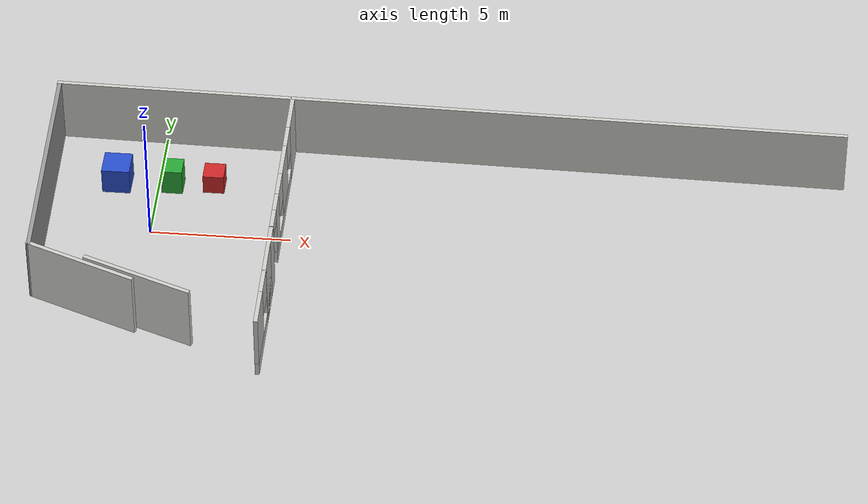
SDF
<sdf version="1.6">
 <world name="default">
  <model name="ground_plane">
   <static>1</static>
   <link name="link">
    <collision name="collision">
     <geometry><plane><normal>0 0 1</normal><size>100 100</size></plane></geometry>
     <surface><friction><ode><mu>100</mu><mu2>50</mu2></ode></friction></surface>
    </collision>
    <visual name="visual">
     <cast_shadows>0</cast_shadows>
     <geometry><plane><normal>0 0 1</normal><size>100 100</size></plane></geometry>
     <material>
      <script><uri>file://media/materials/scripts/gazebo.material</uri><name>Gazebo/Grey</name></script>
     </material>
    </visual>
   </link>
  </model>
  <model name="unit_box_0_0">
   <pose>-1.5 2.5 0.5 0 -0 0</pose>
   <link name="link">
    <inertial>
     <mass>10</mass>
     <inertia>
      <ixx>0.166667</ixx>
      <ixy>0</ixy>
      <ixz>0</ixz>
      <iyy>0.166667</iyy>
      <iyz>0</iyz>
      <izz>0.166667</izz>
     </inertia>
    </inertial>
    <collision name="collision"><geometry><box><size>1 1 1</size></box></geometry></collision>
    <visual name="visual">
     <geometry><box><size>1 1 1</size></box></geometry>
     <material>
      <script><name>Gazebo/Blue</name><uri>file://media/materials/scripts/gazebo.material</uri></script>
     </material>
    </visual>
   </link>
  </model>
  <model name="unit_box_0_1">
   <pose>0.5 2.5 0.5 0 -0 0</pose>
   <link name="link">
    <inertial>
     <mass>10</mass>
     <inertia>
      <ixx>0.166667</ixx>
      <ixy>0</ixy>
      <ixz>0</ixz>
      <iyy>0.166667</iyy>
      <iyz>0</iyz>
      <izz>0.166667</izz>
     </inertia>
    </inertial>
    <collision name="collision"><geometry><box><size>0.75 0.75 1</size></box></geometry></collision>
    <visual name="visual">
     <geometry><box><size>0.75 0.75 1</size></box></geometry>
     <material>
      <script><name>Gazebo/Green</name><uri>file://media/materials/scripts/gazebo.material</uri></script>
     </material>
    </visual>
   </link>
  </model>
  <model name="unit_box_0_2">
   <pose>2.0 2.5 0.5 0 -0 0</pose>
   <link name="link">
    <inertial>
     <mass>10</mass>
     <inertia>
      <ixx>0.166667</ixx>
      <ixy>0</ixy>
      <ixz>0</ixz>
      <iyy>0.166667</iyy>
      <iyz>0</iyz>
      <izz>0.166667</izz>
     </inertia>
    </inertial>
    <collision name="collision"><geometry><box><size>0.75 0.75 0.75</size></box></geometry></collision>
    <visual name="visual">
     <geometry><box><size>0.75 0.75 0.75</size></box></geometry>
     <material>
      <script><name>Gazebo/Red</name><uri>file://media/materials/scripts/gazebo.material</uri></script>
     </material>
    </visual>
   </link>
  </model>
  <model name="Erle Office">
   <link name="Wall_37">
    <pose>-0.042288 9.49816 0 0 0 -0.020076</pose>
    <visual name="Wall_37_Visual">
     <pose>0 0 1.25 0 -0 0</pose>
     <geometry><box><size>28.4042 0.15 2.5</size></box></geometry>
     <material>
      <script><uri>file://media/materials/scripts/gazebo.material</uri><name>Gazebo/CeilingTiled</name></script>
      <ambient>1 1 1 1</ambient>
      <diffuse>1 1 1 1</diffuse>
      <specular>0 0 0 1</specular>
      <emissive>0 0 0 1</emissive>
     </material>
    </visual>
    <collision name="Wall_37_Collision">
     <pose>0 0 1.25 0 -0 0</pose>
     <geometry><box><size>28.4042 0.15 2.5</size></box></geometry>
     <surface>
      <friction>
       <ode><mu>1</mu><mu2>1</mu2><fdir1>0 0 0</fdir1><slip1>0</slip1><slip2>0</slip2></ode>
       <torsional>
        <coefficient>1</coefficient>
        <patch_radius>0</patch_radius>
        <surface_radius>0</surface_radius>
        <use_patch_radius>1</use_patch_radius>
        <ode><slip>0</slip></ode>
       </torsional>
      </friction>
      <bounce><restitution_coefficient>0</restitution_coefficient><threshold>1e+06</threshold></bounce>
      <contact>
       <collide_without_contact>0</collide_without_contact>
       <collide_without_contact_bitmask>1</collide_without_contact_bitmask>
       <collide_bitmask>1</collide_bitmask>
       <ode>
        <soft_cfm>0</soft_cfm>
        <soft_erp>0.2</soft_erp>
        <kp>1e+13</kp>
        <kd>1</kd>
        <max_vel>0.01</max_vel>
        <min_depth>0</min_depth>
       </ode>
       <bullet>
        <split_impulse>1</split_impulse>
        <split_impulse_penetration_threshold>-0.01</split_impulse_penetration_threshold>
        <soft_cfm>0</soft_cfm>
        <soft_erp>0.2</soft_erp>
        <kp>1e+13</kp>
        <kd>1</kd>
       </bullet>
      </contact>
     </surface>
    </collision>
   </link>
   <link name="Wall_39">
    <pose>-14.0693 5.51177 0 0 0 -1.55076</pose>
    <visual name="Wall_39_Visual">
     <pose>0 0 1.25 0 -0 0</pose>
     <geometry><box><size>8.71468 0.15 2.5</size></box></geometry>
     <material>
      <script><uri>file://media/materials/scripts/gazebo.material</uri><name>Gazebo/Grey</name></script>
      <ambient>1 1 1 1</ambient>
      <diffuse>0.7 0.7 0.7 1</diffuse>
      <specular>0.01 0.01 0.01 1</specular>
      <emissive>0 0 0 1</emissive>
     </material>
    </visual>
    <collision name="Wall_39_Collision">
     <pose>0 0 1.25 0 -0 0</pose>
     <geometry><box><size>8.71468 0.15 2.5</size></box></geometry>
     <surface>
      <friction>
       <ode><mu>1</mu><mu2>1</mu2><fdir1>0 0 0</fdir1><slip1>0</slip1><slip2>0</slip2></ode>
       <torsional>
        <coefficient>1</coefficient>
        <patch_radius>0</patch_radius>
        <surface_radius>0</surface_radius>
        <use_patch_radius>1</use_patch_radius>
        <ode><slip>0</slip></ode>
       </torsional>
      </friction>
      <bounce><restitution_coefficient>0</restitution_coefficient><threshold>1e+06</threshold></bounce>
      <contact>
       <collide_without_contact>0</collide_without_contact>
       <collide_without_contact_bitmask>1</collide_without_contact_bitmask>
       <collide_bitmask>1</collide_bitmask>
       <ode>
        <soft_cfm>0</soft_cfm>
        <soft_erp>0.2</soft_erp>
        <kp>1e+13</kp>
        <kd>1</kd>
        <max_vel>0.01</max_vel>
        <min_depth>0</min_depth>
       </ode>
       <bullet>
        <split_impulse>1</split_impulse>
        <split_impulse_penetration_threshold>-0.01</split_impulse_penetration_threshold>
        <soft_cfm>0</soft_cfm>
        <soft_erp>0.2</soft_erp>
        <kp>1e+13</kp>
        <kd>1</kd>
       </bullet>
      </contact>
     </surface>
    </collision>
   </link>
   <link name="Wall_41">
    <pose>-12.1022 0.480829 0 0 0 -0.379104</pose>
    <visual name="Wall_41_Visual">
     <pose>0 0 1.25 0 -0 0</pose>
     <geometry><box><size>4.20017 0.15 2.5</size></box></geometry>
     <material>
      <script><uri>file://media/materials/scripts/gazebo.material</uri><name>Gazebo/CeilingTiled</name></script>
      <ambient>1 1 1 1</ambient>
      <diffuse>1 1 1 1</diffuse>
      <specular>0 0 0 1</specular>
      <emissive>0 0 0 1</emissive>
     </material>
    </visual>
    <collision name="Wall_41_Collision">
     <pose>0 0 1.25 0 -0 0</pose>
     <geometry><box><size>4.20017 0.15 2.5</size></box></geometry>
     <surface>
      <friction>
       <ode><mu>1</mu><mu2>1</mu2><fdir1>0 0 0</fdir1><slip1>0</slip1><slip2>0</slip2></ode>
       <torsional>
        <coefficient>1</coefficient>
        <patch_radius>0</patch_radius>
        <surface_radius>0</surface_radius>
        <use_patch_radius>1</use_patch_radius>
        <ode><slip>0</slip></ode>
       </torsional>
      </friction>
      <bounce><restitution_coefficient>0</restitution_coefficient><threshold>1e+06</threshold></bounce>
      <contact>
       <collide_without_contact>0</collide_without_contact>
       <collide_without_contact_bitmask>1</collide_without_contact_bitmask>
       <collide_bitmask>1</collide_bitmask>
       <ode>
        <soft_cfm>0</soft_cfm>
        <soft_erp>0.2</soft_erp>
        <kp>1e+13</kp>
        <kd>1</kd>
        <max_vel>0.01</max_vel>
        <min_depth>0</min_depth>
       </ode>
       <bullet>
        <split_impulse>1</split_impulse>
        <split_impulse_penetration_threshold>-0.01</split_impulse_penetration_threshold>
        <soft_cfm>0</soft_cfm>
        <soft_erp>0.2</soft_erp>
        <kp>1e+13</kp>
        <kd>1</kd>
       </bullet>
      </contact>
     </surface>
    </collision>
   </link>
   <link name="Wall_46">
    <pose>-5.70631 3.80535 0 0 0 -1.5708</pose>
    <visual name="Wall_46_Visual_0">
     <pose>-5.04967 0 1.25 0 -0 0</pose>
     <geometry><box><size>1.65065 0.15 2.5</size></box></geometry>
     <material>
      <script><uri>file://media/materials/scripts/gazebo.material</uri><name>Gazebo/CeilingTiled</name></script>
      <ambient>1 1 1 1</ambient>
      <diffuse>1 1 1 1</diffuse>
      <specular>0 0 0 1</specular>
      <emissive>0 0 0 1</emissive>
     </material>
    </visual>
    <visual name="Wall_46_Visual_1">
     <pose>2.19326 0 1.25 0 -0 0</pose>
     <geometry><box><size>2.21991 0.15 2.5</size></box></geometry>
     <material>
      <script><uri>file://media/materials/scripts/gazebo.material</uri><name>Gazebo/CeilingTiled</name></script>
      <ambient>1 1 1 1</ambient>
      <diffuse>1 1 1 1</diffuse>
      <specular>0 0 0 1</specular>
      <emissive>0 0 0 1</emissive>
     </material>
    </visual>
    <visual name="Wall_46_Visual_2">
     <pose>2.6257 0 1.25 0 -0 0</pose>
     <geometry><box><size>1.35503 0.15 2.5</size></box></geometry>
     <material>
      <script><uri>file://media/materials/scripts/gazebo.material</uri><name>Gazebo/CeilingTiled</name></script>
      <ambient>1 1 1 1</ambient>
      <diffuse>1 1 1 1</diffuse>
      <specular>0 0 0 1</specular>
      <emissive>0 0 0 1</emissive>
     </material>
    </visual>
    <visual name="Wall_46_Visual_3">
     <pose>-2.02052 0 0.25 0 -0 0</pose>
     <geometry><box><size>4.40766 0.15 0.5</size></box></geometry>
     <material>
      <script><uri>file://media/materials/scripts/gazebo.material</uri><name>Gazebo/CeilingTiled</name></script>
      <ambient>1 1 1 1</ambient>
      <diffuse>1 1 1 1</diffuse>
      <specular>0 0 0 1</specular>
      <emissive>0 0 0 1</emissive>
     </material>
    </visual>
    <visual name="Wall_46_Visual_4">
     <pose>4.58911 0 0.25 0 -0 0</pose>
     <geometry><box><size>2.57178 0.15 0.5</size></box></geometry>
     <material>
      <script><uri>file://media/materials/scripts/gazebo.material</uri><name>Gazebo/CeilingTiled</name></script>
      <ambient>1 1 1 1</ambient>
      <diffuse>1 1 1 1</diffuse>
      <specular>0 0 0 1</specular>
      <emissive>0 0 0 1</emissive>
     </material>
    </visual>
    <visual name="Wall_46_Visual_5">
     <pose>4.58911 0 0.25 0 -0 0</pose>
     <geometry><box><size>2.57178 0.15 0.5</size></box></geometry>
     <material>
      <script><uri>file://media/materials/scripts/gazebo.material</uri><name>Gazebo/CeilingTiled</name></script>
      <ambient>1 1 1 1</ambient>
      <diffuse>1 1 1 1</diffuse>
      <specular>0 0 0 1</specular>
      <emissive>0 0 0 1</emissive>
     </material>
    </visual>
    <visual name="Wall_46_Visual_6">
     <pose>-2.47121 0 1.5 0 -0 0</pose>
     <geometry><box><size>1.48993 0.15 2</size></box></geometry>
     <material>
      <script><uri>file://media/materials/scripts/gazebo.material</uri><name>Gazebo/CeilingTiled</name></script>
      <ambient>1 1 1 1</ambient>
      <diffuse>1 1 1 1</diffuse>
      <specular>0 0 0 1</specular>
      <emissive>0 0 0 1</emissive>
     </material>
    </visual>
    <visual name="Wall_46_Visual_7">
     <pose>-0.232685 0 1.5 0 -0 0</pose>
     <geometry><box><size>0.831983 0.15 2</size></box></geometry>
     <material>
      <script><uri>file://media/materials/scripts/gazebo.material</uri><name>Gazebo/CeilingTiled</name></script>
      <ambient>1 1 1 1</ambient>
      <diffuse>1 1 1 1</diffuse>
      <specular>0 0 0 1</specular>
      <emissive>0 0 0 1</emissive>
     </material>
    </visual>
    <visual name="Wall_46_Visual_8">
     <pose>-0.232685 0 1.5 0 -0 0</pose>
     <geometry><box><size>0.831983 0.15 2</size></box></geometry>
     <material>
      <script><uri>file://media/materials/scripts/gazebo.material</uri><name>Gazebo/CeilingTiled</name></script>
      <ambient>1 1 1 1</ambient>
      <diffuse>1 1 1 1</diffuse>
      <specular>0 0 0 1</specular>
      <emissive>0 0 0 1</emissive>
     </material>
    </visual>
    <visual name="Wall_46_Visual_16">
     <pose>0.615749 0 2.25 0 -0 0</pose>
     <geometry><box><size>0.864884 0.15 0.5</size></box></geometry>
     <material>
      <script><uri>file://media/materials/scripts/gazebo.material</uri><name>Gazebo/CeilingTiled</name></script>
      <ambient>1 1 1 1</ambient>
      <diffuse>1 1 1 1</diffuse>
      <specular>0 0 0 1</specular>
      <emissive>0 0 0 1</emissive>
     </material>
    </visual>
    <visual name="Wall_46_Visual_9">
     <pose>5.11475 0 1.5 0 -0 0</pose>
     <geometry><box><size>1.52051 0.15 2</size></box></geometry>
     <material>
      <script><uri>file://media/materials/scripts/gazebo.material</uri><name>Gazebo/CeilingTiled</name></script>
      <ambient>1 1 1 1</ambient>
      <diffuse>1 1 1 1</diffuse>
      <specular>0 0 0 1</specular>
      <emissive>0 0 0 1</emissive>
     </material>
    </visual>
    <visual name="Wall_46_Visual_11">
     <pose>-3.72026 0 1.9 0 -0 0</pose>
     <geometry><box><size>1.00818 0.15 1.2</size></box></geometry>
     <material>
      <script><uri>file://media/materials/scripts/gazebo.material</uri><name>Gazebo/CeilingTiled</name></script>
      <ambient>1 1 1 1</ambient>
      <diffuse>1 1 1 1</diffuse>
      <specular>0 0 0 1</specular>
      <emissive>0 0 0 1</emissive>
     </material>
    </visual>
    <visual name="Wall_46_Visual_10">
     <pose>5.11475 0 1.5 0 -0 0</pose>
     <geometry><box><size>1.52051 0.15 2</size></box></geometry>
     <material>
      <script><uri>file://media/materials/scripts/gazebo.material</uri><name>Gazebo/CeilingTiled</name></script>
      <ambient>1 1 1 1</ambient>
      <diffuse>1 1 1 1</diffuse>
      <specular>0 0 0 1</specular>
      <emissive>0 0 0 1</emissive>
     </material>
    </visual>
    <visual name="Wall_46_Visual_12">
     <pose>3.82885 0 1.9 0 -0 0</pose>
     <geometry><box><size>1.05127 0.15 1.2</size></box></geometry>
     <material>
      <script><uri>file://media/materials/scripts/gazebo.material</uri><name>Gazebo/CeilingTiled</name></script>
      <ambient>1 1 1 1</ambient>
      <diffuse>1 1 1 1</diffuse>
      <specular>0 0 0 1</specular>
      <emissive>0 0 0 1</emissive>
     </material>
    </visual>
    <visual name="Wall_46_Visual_13">
     <pose>3.82885 0 1.9 0 -0 0</pose>
     <geometry><box><size>1.05127 0.15 1.2</size></box></geometry>
     <material>
      <script><uri>file://media/materials/scripts/gazebo.material</uri><name>Gazebo/CeilingTiled</name></script>
      <ambient>1 1 1 1</ambient>
      <diffuse>1 1 1 1</diffuse>
      <specular>0 0 0 1</specular>
      <emissive>0 0 0 1</emissive>
     </material>
    </visual>
    <visual name="Wall_46_Visual_14">
     <pose>-1.18746 0 1.9 0 -0 0</pose>
     <geometry><box><size>1.07757 0.15 1.2</size></box></geometry>
     <material>
      <script><uri>file://media/materials/scripts/gazebo.material</uri><name>Gazebo/CeilingTiled</name></script>
      <ambient>1 1 1 1</ambient>
      <diffuse>1 1 1 1</diffuse>
      <specular>0 0 0 1</specular>
      <emissive>0 0 0 1</emissive>
     </material>
    </visual>
    <visual name="Wall_46_Visual_15">
     <pose>0.615749 0 2.25 0 -0 0</pose>
     <geometry><box><size>0.864884 0.15 0.5</size></box></geometry>
     <material>
      <script><uri>file://media/materials/scripts/gazebo.material</uri><name>Gazebo/CeilingTiled</name></script>
      <ambient>1 1 1 1</ambient>
      <diffuse>1 1 1 1</diffuse>
      <specular>0 0 0 1</specular>
      <emissive>0 0 0 1</emissive>
     </material>
    </visual>
    <collision name="Wall_46_Collision_11">
     <pose>-3.72026 0 1.9 0 -0 0</pose>
     <geometry><box><size>1.00818 0.15 1.2</size></box></geometry>
     <surface>
      <friction>
       <ode><mu>1</mu><mu2>1</mu2><fdir1>0 0 0</fdir1><slip1>0</slip1><slip2>0</slip2></ode>
       <torsional>
        <coefficient>1</coefficient>
        <patch_radius>0</patch_radius>
        <surface_radius>0</surface_radius>
        <use_patch_radius>1</use_patch_radius>
        <ode><slip>0</slip></ode>
       </torsional>
      </friction>
      <bounce><restitution_coefficient>0</restitution_coefficient><threshold>1e+06</threshold></bounce>
      <contact>
       <collide_without_contact>0</collide_without_contact>
       <collide_without_contact_bitmask>1</collide_without_contact_bitmask>
       <collide_bitmask>1</collide_bitmask>
       <ode>
        <soft_cfm>0</soft_cfm>
        <soft_erp>0.2</soft_erp>
        <kp>1e+13</kp>
        <kd>1</kd>
        <max_vel>0.01</max_vel>
        <min_depth>0</min_depth>
       </ode>
       <bullet>
        <split_impulse>1</split_impulse>
        <split_impulse_penetration_threshold>-0.01</split_impulse_penetration_threshold>
        <soft_cfm>0</soft_cfm>
        <soft_erp>0.2</soft_erp>
        <kp>1e+13</kp>
        <kd>1</kd>
       </bullet>
      </contact>
     </surface>
    </collision>
    <collision name="Wall_46_Collision_14">
     <pose>-1.18746 0 1.9 0 -0 0</pose>
     <geometry><box><size>1.07757 0.15 1.2</size></box></geometry>
     <surface>
      <friction>
       <ode><mu>1</mu><mu2>1</mu2><fdir1>0 0 0</fdir1><slip1>0</slip1><slip2>0</slip2></ode>
       <torsional>
        <coefficient>1</coefficient>
        <patch_radius>0</patch_radius>
        <surface_radius>0</surface_radius>
        <use_patch_radius>1</use_patch_radius>
        <ode><slip>0</slip></ode>
       </torsional>
      </friction>
      <bounce><restitution_coefficient>0</restitution_coefficient><threshold>1e+06</threshold></bounce>
      <contact>
       <collide_without_contact>0</collide_without_contact>
       <collide_without_contact_bitmask>1</collide_without_contact_bitmask>
       <collide_bitmask>1</collide_bitmask>
       <ode>
        <soft_cfm>0</soft_cfm>
        <soft_erp>0.2</soft_erp>
        <kp>1e+13</kp>
        <kd>1</kd>
        <max_vel>0.01</max_vel>
        <min_depth>0</min_depth>
       </ode>
       <bullet>
        <split_impulse>1</split_impulse>
        <split_impulse_penetration_threshold>-0.01</split_impulse_penetration_threshold>
        <soft_cfm>0</soft_cfm>
        <soft_erp>0.2</soft_erp>
        <kp>1e+13</kp>
        <kd>1</kd>
       </bullet>
      </contact>
     </surface>
    </collision>
    <collision name="Wall_46_Collision_16">
     <pose>0.615749 0 2.25 0 -0 0</pose>
     <geometry><box><size>0.864884 0.15 0.5</size></box></geometry>
     <surface>
      <friction>
       <ode><mu>1</mu><mu2>1</mu2><fdir1>0 0 0</fdir1><slip1>0</slip1><slip2>0</slip2></ode>
       <torsional>
        <coefficient>1</coefficient>
        <patch_radius>0</patch_radius>
        <surface_radius>0</surface_radius>
        <use_patch_radius>1</use_patch_radius>
        <ode><slip>0</slip></ode>
       </torsional>
      </friction>
      <bounce><restitution_coefficient>0</restitution_coefficient><threshold>1e+06</threshold></bounce>
      <contact>
       <collide_without_contact>0</collide_without_contact>
       <collide_without_contact_bitmask>1</collide_without_contact_bitmask>
       <collide_bitmask>1</collide_bitmask>
       <ode>
        <soft_cfm>0</soft_cfm>
        <soft_erp>0.2</soft_erp>
        <kp>1e+13</kp>
        <kd>1</kd>
        <max_vel>0.01</max_vel>
        <min_depth>0</min_depth>
       </ode>
       <bullet>
        <split_impulse>1</split_impulse>
        <split_impulse_penetration_threshold>-0.01</split_impulse_penetration_threshold>
        <soft_cfm>0</soft_cfm>
        <soft_erp>0.2</soft_erp>
        <kp>1e+13</kp>
        <kd>1</kd>
       </bullet>
      </contact>
     </surface>
    </collision>
    <collision name="Wall_46_Collision_0">
     <pose>-5.04967 0 1.25 0 -0 0</pose>
     <geometry><box><size>1.65065 0.15 2.5</size></box></geometry>
     <surface>
      <friction>
       <ode><mu>1</mu><mu2>1</mu2><fdir1>0 0 0</fdir1><slip1>0</slip1><slip2>0</slip2></ode>
       <torsional>
        <coefficient>1</coefficient>
        <patch_radius>0</patch_radius>
        <surface_radius>0</surface_radius>
        <use_patch_radius>1</use_patch_radius>
        <ode><slip>0</slip></ode>
       </torsional>
      </friction>
      <bounce><restitution_coefficient>0</restitution_coefficient><threshold>1e+06</threshold></bounce>
      <contact>
       <collide_without_contact>0</collide_without_contact>
       <collide_without_contact_bitmask>1</collide_without_contact_bitmask>
       <collide_bitmask>1</collide_bitmask>
       <ode>
        <soft_cfm>0</soft_cfm>
        <soft_erp>0.2</soft_erp>
        <kp>1e+13</kp>
        <kd>1</kd>
        <max_vel>0.01</max_vel>
        <min_depth>0</min_depth>
       </ode>
       <bullet>
        <split_impulse>1</split_impulse>
        <split_impulse_penetration_threshold>-0.01</split_impulse_penetration_threshold>
        <soft_cfm>0</soft_cfm>
        <soft_erp>0.2</soft_erp>
        <kp>1e+13</kp>
        <kd>1</kd>
       </bullet>
      </contact>
     </surface>
    </collision>
    <collision name="Wall_46_Collision_1">
     <pose>2.19326 0 1.25 0 -0 0</pose>
     <geometry><box><size>2.21991 0.15 2.5</size></box></geometry>
     <surface>
      <friction>
       <ode><mu>1</mu><mu2>1</mu2><fdir1>0 0 0</fdir1><slip1>0</slip1><slip2>0</slip2></ode>
       <torsional>
        <coefficient>1</coefficient>
        <patch_radius>0</patch_radius>
        <surface_radius>0</surface_radius>
        <use_patch_radius>1</use_patch_radius>
        <ode><slip>0</slip></ode>
       </torsional>
      </friction>
      <bounce><restitution_coefficient>0</restitution_coefficient><threshold>1e+06</threshold></bounce>
      <contact>
       <collide_without_contact>0</collide_without_contact>
       <collide_without_contact_bitmask>1</collide_without_contact_bitmask>
       <collide_bitmask>1</collide_bitmask>
       <ode>
        <soft_cfm>0</soft_cfm>
        <soft_erp>0.2</soft_erp>
        <kp>1e+13</kp>
        <kd>1</kd>
        <max_vel>0.01</max_vel>
        <min_depth>0</min_depth>
       </ode>
       <bullet>
        <split_impulse>1</split_impulse>
        <split_impulse_penetration_threshold>-0.01</split_impulse_penetration_threshold>
        <soft_cfm>0</soft_cfm>
        <soft_erp>0.2</soft_erp>
        <kp>1e+13</kp>
        <kd>1</kd>
       </bullet>
      </contact>
     </surface>
    </collision>
    <collision name="Wall_46_Collision_6">
     <pose>-2.47121 0 1.5 0 -0 0</pose>
     <geometry><box><size>1.48993 0.15 2</size></box></geometry>
     <surface>
      <friction>
       <ode><mu>1</mu><mu2>1</mu2><fdir1>0 0 0</fdir1><slip1>0</slip1><slip2>0</slip2></ode>
       <torsional>
        <coefficient>1</coefficient>
        <patch_radius>0</patch_radius>
        <surface_radius>0</surface_radius>
        <use_patch_radius>1</use_patch_radius>
        <ode><slip>0</slip></ode>
       </torsional>
      </friction>
      <bounce><restitution_coefficient>0</restitution_coefficient><threshold>1e+06</threshold></bounce>
      <contact>
       <collide_without_contact>0</collide_without_contact>
       <collide_without_contact_bitmask>1</collide_without_contact_bitmask>
       <collide_bitmask>1</collide_bitmask>
       <ode>
        <soft_cfm>0</soft_cfm>
        <soft_erp>0.2</soft_erp>
        <kp>1e+13</kp>
        <kd>1</kd>
        <max_vel>0.01</max_vel>
        <min_depth>0</min_depth>
       </ode>
       <bullet>
        <split_impulse>1</split_impulse>
        <split_impulse_penetration_threshold>-0.01</split_impulse_penetration_threshold>
        <soft_cfm>0</soft_cfm>
        <soft_erp>0.2</soft_erp>
        <kp>1e+13</kp>
        <kd>1</kd>
       </bullet>
      </contact>
     </surface>
    </collision>
    <collision name="Wall_46_Collision_3">
     <pose>-2.02052 0 0.25 0 -0 0</pose>
     <geometry><box><size>4.40766 0.15 0.5</size></box></geometry>
     <surface>
      <friction>
       <ode><mu>1</mu><mu2>1</mu2><fdir1>0 0 0</fdir1><slip1>0</slip1><slip2>0</slip2></ode>
       <torsional>
        <coefficient>1</coefficient>
        <patch_radius>0</patch_radius>
        <surface_radius>0</surface_radius>
        <use_patch_radius>1</use_patch_radius>
        <ode><slip>0</slip></ode>
       </torsional>
      </friction>
      <bounce><restitution_coefficient>0</restitution_coefficient><threshold>1e+06</threshold></bounce>
      <contact>
       <collide_without_contact>0</collide_without_contact>
       <collide_without_contact_bitmask>1</collide_without_contact_bitmask>
       <collide_bitmask>1</collide_bitmask>
       <ode>
        <soft_cfm>0</soft_cfm>
        <soft_erp>0.2</soft_erp>
        <kp>1e+13</kp>
        <kd>1</kd>
        <max_vel>0.01</max_vel>
        <min_depth>0</min_depth>
       </ode>
       <bullet>
        <split_impulse>1</split_impulse>
        <split_impulse_penetration_threshold>-0.01</split_impulse_penetration_threshold>
        <soft_cfm>0</soft_cfm>
        <soft_erp>0.2</soft_erp>
        <kp>1e+13</kp>
        <kd>1</kd>
       </bullet>
      </contact>
     </surface>
    </collision>
    <collision name="Wall_46_Collision_2">
     <pose>2.6257 0 1.25 0 -0 0</pose>
     <geometry><box><size>1.35503 0.15 2.5</size></box></geometry>
     <surface>
      <friction>
       <ode><mu>1</mu><mu2>1</mu2><fdir1>0 0 0</fdir1><slip1>0</slip1><slip2>0</slip2></ode>
       <torsional>
        <coefficient>1</coefficient>
        <patch_radius>0</patch_radius>
        <surface_radius>0</surface_radius>
        <use_patch_radius>1</use_patch_radius>
        <ode><slip>0</slip></ode>
       </torsional>
      </friction>
      <bounce><restitution_coefficient>0</restitution_coefficient><threshold>1e+06</threshold></bounce>
      <contact>
       <collide_without_contact>0</collide_without_contact>
       <collide_without_contact_bitmask>1</collide_without_contact_bitmask>
       <collide_bitmask>1</collide_bitmask>
       <ode>
        <soft_cfm>0</soft_cfm>
        <soft_erp>0.2</soft_erp>
        <kp>1e+13</kp>
        <kd>1</kd>
        <max_vel>0.01</max_vel>
        <min_depth>0</min_depth>
       </ode>
       <bullet>
        <split_impulse>1</split_impulse>
        <split_impulse_penetration_threshold>-0.01</split_impulse_penetration_threshold>
        <soft_cfm>0</soft_cfm>
        <soft_erp>0.2</soft_erp>
        <kp>1e+13</kp>
        <kd>1</kd>
       </bullet>
      </contact>
     </surface>
    </collision>
    <collision name="Wall_46_Collision_4">
     <pose>4.58911 0 0.25 0 -0 0</pose>
     <geometry><box><size>2.57178 0.15 0.5</size></box></geometry>
     <surface>
      <friction>
       <ode><mu>1</mu><mu2>1</mu2><fdir1>0 0 0</fdir1><slip1>0</slip1><slip2>0</slip2></ode>
       <torsional>
        <coefficient>1</coefficient>
        <patch_radius>0</patch_radius>
        <surface_radius>0</surface_radius>
        <use_patch_radius>1</use_patch_radius>
        <ode><slip>0</slip></ode>
       </torsional>
      </friction>
      <bounce><restitution_coefficient>0</restitution_coefficient><threshold>1e+06</threshold></bounce>
      <contact>
       <collide_without_contact>0</collide_without_contact>
       <collide_without_contact_bitmask>1</collide_without_contact_bitmask>
       <collide_bitmask>1</collide_bitmask>
       <ode>
        <soft_cfm>0</soft_cfm>
        <soft_erp>0.2</soft_erp>
        <kp>1e+13</kp>
        <kd>1</kd>
        <max_vel>0.01</max_vel>
        <min_depth>0</min_depth>
       </ode>
       <bullet>
        <split_impulse>1</split_impulse>
        <split_impulse_penetration_threshold>-0.01</split_impulse_penetration_threshold>
        <soft_cfm>0</soft_cfm>
        <soft_erp>0.2</soft_erp>
        <kp>1e+13</kp>
        <kd>1</kd>
       </bullet>
      </contact>
     </surface>
    </collision>
    <collision name="Wall_46_Collision_5">
     <pose>4.58911 0 0.25 0 -0 0</pose>
     <geometry><box><size>2.57178 0.15 0.5</size></box></geometry>
     <surface>
      <friction>
       <ode><mu>1</mu><mu2>1</mu2><fdir1>0 0 0</fdir1><slip1>0</slip1><slip2>0</slip2></ode>
       <torsional>
        <coefficient>1</coefficient>
        <patch_radius>0</patch_radius>
        <surface_radius>0</surface_radius>
        <use_patch_radius>1</use_patch_radius>
        <ode><slip>0</slip></ode>
       </torsional>
      </friction>
      <bounce><restitution_coefficient>0</restitution_coefficient><threshold>1e+06</threshold></bounce>
      <contact>
       <collide_without_contact>0</collide_without_contact>
       <collide_without_contact_bitmask>1</collide_without_contact_bitmask>
       <collide_bitmask>1</collide_bitmask>
       <ode>
        <soft_cfm>0</soft_cfm>
        <soft_erp>0.2</soft_erp>
        <kp>1e+13</kp>
        <kd>1</kd>
        <max_vel>0.01</max_vel>
        <min_depth>0</min_depth>
       </ode>
       <bullet>
        <split_impulse>1</split_impulse>
        <split_impulse_penetration_threshold>-0.01</split_impulse_penetration_threshold>
        <soft_cfm>0</soft_cfm>
        <soft_erp>0.2</soft_erp>
        <kp>1e+13</kp>
        <kd>1</kd>
       </bullet>
      </contact>
     </surface>
    </collision>
    <collision name="Wall_46_Collision_8">
     <pose>-0.232685 0 1.5 0 -0 0</pose>
     <geometry><box><size>0.831983 0.15 2</size></box></geometry>
     <surface>
      <friction>
       <ode><mu>1</mu><mu2>1</mu2><fdir1>0 0 0</fdir1><slip1>0</slip1><slip2>0</slip2></ode>
       <torsional>
        <coefficient>1</coefficient>
        <patch_radius>0</patch_radius>
        <surface_radius>0</surface_radius>
        <use_patch_radius>1</use_patch_radius>
        <ode><slip>0</slip></ode>
       </torsional>
      </friction>
      <bounce><restitution_coefficient>0</restitution_coefficient><threshold>1e+06</threshold></bounce>
      <contact>
       <collide_without_contact>0</collide_without_contact>
       <collide_without_contact_bitmask>1</collide_without_contact_bitmask>
       <collide_bitmask>1</collide_bitmask>
       <ode>
        <soft_cfm>0</soft_cfm>
        <soft_erp>0.2</soft_erp>
        <kp>1e+13</kp>
        <kd>1</kd>
        <max_vel>0.01</max_vel>
        <min_depth>0</min_depth>
       </ode>
       <bullet>
        <split_impulse>1</split_impulse>
        <split_impulse_penetration_threshold>-0.01</split_impulse_penetration_threshold>
        <soft_cfm>0</soft_cfm>
        <soft_erp>0.2</soft_erp>
        <kp>1e+13</kp>
        <kd>1</kd>
       </bullet>
      </contact>
     </surface>
    </collision>
    <collision name="Wall_46_Collision_7">
     <pose>-0.232685 0 1.5 0 -0 0</pose>
     <geometry><box><size>0.831983 0.15 2</size></box></geometry>
     <surface>
      <friction>
       <ode><mu>1</mu><mu2>1</mu2><fdir1>0 0 0</fdir1><slip1>0</slip1><slip2>0</slip2></ode>
       <torsional>
        <coefficient>1</coefficient>
        <patch_radius>0</patch_radius>
        <surface_radius>0</surface_radius>
        <use_patch_radius>1</use_patch_radius>
        <ode><slip>0</slip></ode>
       </torsional>
      </friction>
      <bounce><restitution_coefficient>0</restitution_coefficient><threshold>1e+06</threshold></bounce>
      <contact>
       <collide_without_contact>0</collide_without_contact>
       <collide_without_contact_bitmask>1</collide_without_contact_bitmask>
       <collide_bitmask>1</collide_bitmask>
       <ode>
        <soft_cfm>0</soft_cfm>
        <soft_erp>0.2</soft_erp>
        <kp>1e+13</kp>
        <kd>1</kd>
        <max_vel>0.01</max_vel>
        <min_depth>0</min_depth>
       </ode>
       <bullet>
        <split_impulse>1</split_impulse>
        <split_impulse_penetration_threshold>-0.01</split_impulse_penetration_threshold>
        <soft_cfm>0</soft_cfm>
        <soft_erp>0.2</soft_erp>
        <kp>1e+13</kp>
        <kd>1</kd>
       </bullet>
      </contact>
     </surface>
    </collision>
    <collision name="Wall_46_Collision_9">
     <pose>5.11475 0 1.5 0 -0 0</pose>
     <geometry><box><size>1.52051 0.15 2</size></box></geometry>
     <surface>
      <friction>
       <ode><mu>1</mu><mu2>1</mu2><fdir1>0 0 0</fdir1><slip1>0</slip1><slip2>0</slip2></ode>
       <torsional>
        <coefficient>1</coefficient>
        <patch_radius>0</patch_radius>
        <surface_radius>0</surface_radius>
        <use_patch_radius>1</use_patch_radius>
        <ode><slip>0</slip></ode>
       </torsional>
      </friction>
      <bounce><restitution_coefficient>0</restitution_coefficient><threshold>1e+06</threshold></bounce>
      <contact>
       <collide_without_contact>0</collide_without_contact>
       <collide_without_contact_bitmask>1</collide_without_contact_bitmask>
       <collide_bitmask>1</collide_bitmask>
       <ode>
        <soft_cfm>0</soft_cfm>
        <soft_erp>0.2</soft_erp>
        <kp>1e+13</kp>
        <kd>1</kd>
        <max_vel>0.01</max_vel>
        <min_depth>0</min_depth>
       </ode>
       <bullet>
        <split_impulse>1</split_impulse>
        <split_impulse_penetration_threshold>-0.01</split_impulse_penetration_threshold>
        <soft_cfm>0</soft_cfm>
        <soft_erp>0.2</soft_erp>
        <kp>1e+13</kp>
        <kd>1</kd>
       </bullet>
      </contact>
     </surface>
    </collision>
    <collision name="Wall_46_Collision_10">
     <pose>5.11475 0 1.5 0 -0 0</pose>
     <geometry><box><size>1.52051 0.15 2</size></box></geometry>
     <surface>
      <friction>
       <ode><mu>1</mu><mu2>1</mu2><fdir1>0 0 0</fdir1><slip1>0</slip1><slip2>0</slip2></ode>
       <torsional>
        <coefficient>1</coefficient>
        <patch_radius>0</patch_radius>
        <surface_radius>0</surface_radius>
        <use_patch_radius>1</use_patch_radius>
        <ode><slip>0</slip></ode>
       </torsional>
      </friction>
      <bounce><restitution_coefficient>0</restitution_coefficient><threshold>1e+06</threshold></bounce>
      <contact>
       <collide_without_contact>0</collide_without_contact>
       <collide_without_contact_bitmask>1</collide_without_contact_bitmask>
       <collide_bitmask>1</collide_bitmask>
       <ode>
        <soft_cfm>0</soft_cfm>
        <soft_erp>0.2</soft_erp>
        <kp>1e+13</kp>
        <kd>1</kd>
        <max_vel>0.01</max_vel>
        <min_depth>0</min_depth>
       </ode>
       <bullet>
        <split_impulse>1</split_impulse>
        <split_impulse_penetration_threshold>-0.01</split_impulse_penetration_threshold>
        <soft_cfm>0</soft_cfm>
        <soft_erp>0.2</soft_erp>
        <kp>1e+13</kp>
        <kd>1</kd>
       </bullet>
      </contact>
     </surface>
    </collision>
    <collision name="Wall_46_Collision_12">
     <pose>3.82885 0 1.9 0 -0 0</pose>
     <geometry><box><size>1.05127 0.15 1.2</size></box></geometry>
     <surface>
      <friction>
       <ode><mu>1</mu><mu2>1</mu2><fdir1>0 0 0</fdir1><slip1>0</slip1><slip2>0</slip2></ode>
       <torsional>
        <coefficient>1</coefficient>
        <patch_radius>0</patch_radius>
        <surface_radius>0</surface_radius>
        <use_patch_radius>1</use_patch_radius>
        <ode><slip>0</slip></ode>
       </torsional>
      </friction>
      <bounce><restitution_coefficient>0</restitution_coefficient><threshold>1e+06</threshold></bounce>
      <contact>
       <collide_without_contact>0</collide_without_contact>
       <collide_without_contact_bitmask>1</collide_without_contact_bitmask>
       <collide_bitmask>1</collide_bitmask>
       <ode>
        <soft_cfm>0</soft_cfm>
        <soft_erp>0.2</soft_erp>
        <kp>1e+13</kp>
        <kd>1</kd>
        <max_vel>0.01</max_vel>
        <min_depth>0</min_depth>
       </ode>
       <bullet>
        <split_impulse>1</split_impulse>
        <split_impulse_penetration_threshold>-0.01</split_impulse_penetration_threshold>
        <soft_cfm>0</soft_cfm>
        <soft_erp>0.2</soft_erp>
        <kp>1e+13</kp>
        <kd>1</kd>
       </bullet>
      </contact>
     </surface>
    </collision>
    <collision name="Wall_46_Collision_13">
     <pose>3.82885 0 1.9 0 -0 0</pose>
     <geometry><box><size>1.05127 0.15 1.2</size></box></geometry>
     <surface>
      <friction>
       <ode><mu>1</mu><mu2>1</mu2><fdir1>0 0 0</fdir1><slip1>0</slip1><slip2>0</slip2></ode>
       <torsional>
        <coefficient>1</coefficient>
        <patch_radius>0</patch_radius>
        <surface_radius>0</surface_radius>
        <use_patch_radius>1</use_patch_radius>
        <ode><slip>0</slip></ode>
       </torsional>
      </friction>
      <bounce><restitution_coefficient>0</restitution_coefficient><threshold>1e+06</threshold></bounce>
      <contact>
       <collide_without_contact>0</collide_without_contact>
       <collide_without_contact_bitmask>1</collide_without_contact_bitmask>
       <collide_bitmask>1</collide_bitmask>
       <ode>
        <soft_cfm>0</soft_cfm>
        <soft_erp>0.2</soft_erp>
        <kp>1e+13</kp>
        <kd>1</kd>
        <max_vel>0.01</max_vel>
        <min_depth>0</min_depth>
       </ode>
       <bullet>
        <split_impulse>1</split_impulse>
        <split_impulse_penetration_threshold>-0.01</split_impulse_penetration_threshold>
        <soft_cfm>0</soft_cfm>
        <soft_erp>0.2</soft_erp>
        <kp>1e+13</kp>
        <kd>1</kd>
       </bullet>
      </contact>
     </surface>
    </collision>
    <collision name="Wall_46_Collision_15">
     <pose>0.615749 0 2.25 0 -0 0</pose>
     <geometry><box><size>0.864884 0.15 0.5</size></box></geometry>
     <surface>
      <friction>
       <ode><mu>1</mu><mu2>1</mu2><fdir1>0 0 0</fdir1><slip1>0</slip1><slip2>0</slip2></ode>
       <torsional>
        <coefficient>1</coefficient>
        <patch_radius>0</patch_radius>
        <surface_radius>0</surface_radius>
        <use_patch_radius>1</use_patch_radius>
        <ode><slip>0</slip></ode>
       </torsional>
      </friction>
      <bounce><restitution_coefficient>0</restitution_coefficient><threshold>1e+06</threshold></bounce>
      <contact>
       <collide_without_contact>0</collide_without_contact>
       <collide_without_contact_bitmask>1</collide_without_contact_bitmask>
       <collide_bitmask>1</collide_bitmask>
       <ode>
        <soft_cfm>0</soft_cfm>
        <soft_erp>0.2</soft_erp>
        <kp>1e+13</kp>
        <kd>1</kd>
        <max_vel>0.01</max_vel>
        <min_depth>0</min_depth>
       </ode>
       <bullet>
        <split_impulse>1</split_impulse>
        <split_impulse_penetration_threshold>-0.01</split_impulse_penetration_threshold>
        <soft_cfm>0</soft_cfm>
        <soft_erp>0.2</soft_erp>
        <kp>1e+13</kp>
        <kd>1</kd>
       </bullet>
      </contact>
     </surface>
    </collision>
   </link>
   <link name="Wall_70">
    <pose>-10.0533 -0.041807 0 0 0 -0.370492</pose>
    <inertial>
     <mass>1</mass>
     <inertia><ixx>1</ixx><ixy>0</ixy><ixz>0</ixz><iyy>1</iyy><iyz>0</iyz><izz>1</izz></inertia>
    </inertial>
    <visual name="Wall_70_Visual">
     <pose>0 0 1.25 0 -0 0</pose>
     <geometry><box><size>4.12084 0.15 2.5</size></box></geometry>
     <material>
      <script><uri>file://media/materials/scripts/gazebo.material</uri><name>Gazebo/CeilingTiled</name></script>
      <ambient>1 1 1 1</ambient>
      <diffuse>1 1 1 1</diffuse>
      <specular>0 0 0 1</specular>
      <emissive>0 0 0 1</emissive>
      <shader type="vertex"><normal_map>__default__</normal_map></shader>
     </material>
    </visual>
    <collision name="Wall_70_Collision">
     <pose>0 0 1.25 0 -0 0</pose>
     <geometry><box><size>4.12084 0.15 2.5</size></box></geometry>
     <surface>
      <friction>
       <ode><mu>1</mu><mu2>1</mu2><fdir1>0 0 0</fdir1><slip1>0</slip1><slip2>0</slip2></ode>
       <torsional>
        <coefficient>1</coefficient>
        <patch_radius>0</patch_radius>
        <surface_radius>0</surface_radius>
        <use_patch_radius>1</use_patch_radius>
        <ode><slip>0</slip></ode>
       </torsional>
      </friction>
      <bounce><restitution_coefficient>0</restitution_coefficient><threshold>1e+06</threshold></bounce>
      <contact>
       <collide_without_contact>0</collide_without_contact>
       <collide_without_contact_bitmask>1</collide_without_contact_bitmask>
       <collide_bitmask>1</collide_bitmask>
       <ode>
        <soft_cfm>0</soft_cfm>
        <soft_erp>0.2</soft_erp>
        <kp>1e+13</kp>
        <kd>1</kd>
        <max_vel>0.01</max_vel>
        <min_depth>0</min_depth>
       </ode>
       <bullet>
        <split_impulse>1</split_impulse>
        <split_impulse_penetration_threshold>-0.01</split_impulse_penetration_threshold>
        <soft_cfm>0</soft_cfm>
        <soft_erp>0.2</soft_erp>
        <kp>1e+13</kp>
        <kd>1</kd>
       </bullet>
      </contact>
     </surface>
    </collision>
   </link>
   <static>1</static>
   <pose>10.3102 -4.80805 0 0 -0 0</pose>
  </model>
 </world>
</sdf>
